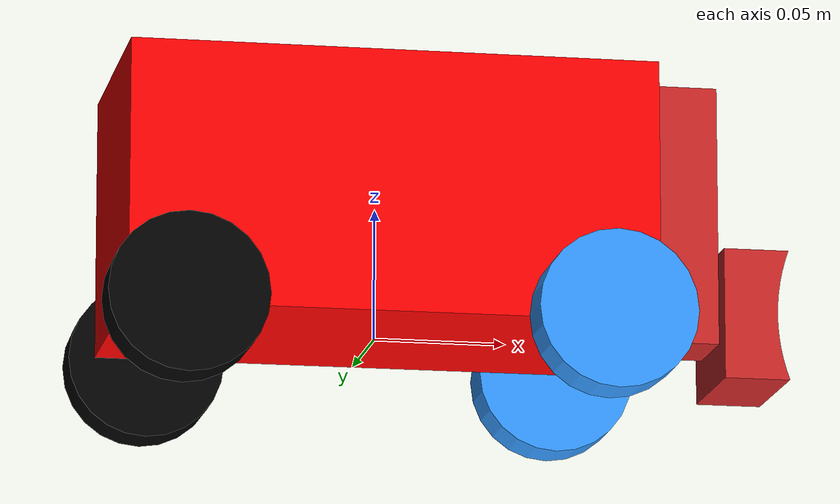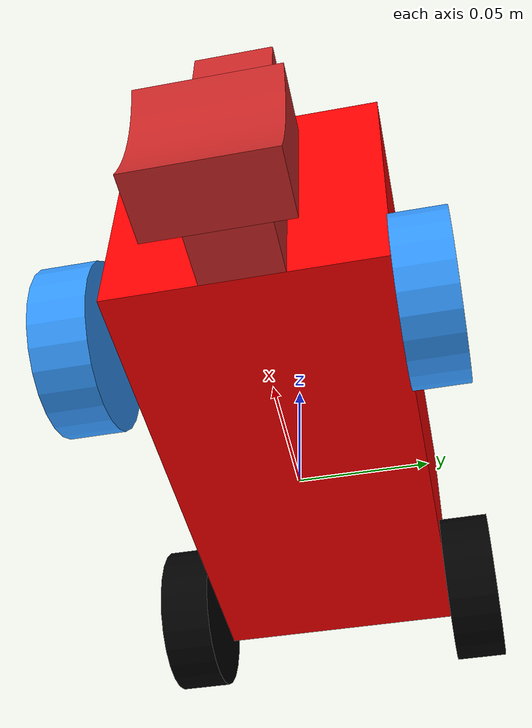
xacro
<?xml version="1.0"?>
<robot xmlns:xacro="http://www.ros.org/wiki/xacro" >
<xacro:include filename="inertial_macros.xacro" />

    <material name="white">
        <color rgba="1 1 1 1" />
    </material>

    <material name="orange">
        <color rgba="1 0.5 0 1"/>
    </material>

    <material name="blue">
        <color rgba="0.2 0.6 1 1"/>
    </material>

    <material name="black">
        <color rgba="0 0 0 1"/>
    </material>

    <material name="red">
        <color rgba="1 0 0 1"/>
    </material>

<!-- BASE LINK -->
<link name="base_link">

</link>

<joint name="chassis_joint" type="fixed">
    <parent link="base_link"/>
    <child link="chassis"/>
    <origin xyz="0 0 0"/>
</joint>

<link name="chassis">
    <visual>
        <geometry>
            <mesh filename="file://$(find articubot_one)/description/NewBody.dae" scale="10 10 10"/>
        </geometry>
        <material name="red"/>
    </visual>
    <collision>
        <geometry>
         <mesh filename="file://$(find articubot_one)/description/NewBody.dae" scale="10 10 10"/>
        </geometry>
    </collision>
    <xacro:inertial_box mass="40" x="0.2" y="0.1" z="0.1">
        <origin xyz="0 0 0.05" rpy="0 0 0"/>
    </xacro:inertial_box>
</link>
<gazebo reference="chassis">
    <material>Gazebo/Orange</material>
</gazebo>

<!-- LEFT WHEEL back-->
<joint name= "left_wheel_back_joint" type="continuous">
    <parent link="base_link"/>
    <child link="left_wheel_back"/>
    <origin xyz=" -0.08 0.06 0" rpy="-${pi/2} 0 0"/>
    <axis xyz="0 0 1"/>
</joint>

<link name="left_wheel_back">
    <visual>
        <geometry>
            <cylinder length="0.02" radius="0.03" />
        </geometry>
        <material name="black"/>
    </visual>
    <collision>
        <geometry>
            <cylinder length="0.02" radius="0.03" />
        </geometry>
    </collision>
    <xacro:inertial_cylinder mass="6" length="0.02" radius="0.03">
        <origin xyz="0 0 0" rpy="0 0 0"/>
    </xacro:inertial_cylinder>
</link>
<gazebo reference="left_wheel_back">
    <material>Gazebo/Black</material>
    <mu1 value="0.8"/>
    <mu2 value="0.8"/>
</gazebo>

<!-- LEFT WHEEL FRONT-->
<joint name="left_wheel_front_joint" type="continuous">
    <parent link="base_link"/>
    <child link="left_wheel_front"/>
    <origin xyz=" 0.08 0.06 0" rpy="-${pi/2} 0 0"/>
    <axis xyz="0 0 1"/>
</joint>

<link name="left_wheel_front">
    <visual>
        <geometry>
            <cylinder length="0.02" radius="0.03" />
        </geometry>
        <material name="blue"/>
    </visual>
    <collision>
        <geometry>
            <cylinder length="0.02" radius="0.03" />
        </geometry>
    </collision>
    <xacro:inertial_cylinder mass="6" length="0.02" radius="0.03">
        <origin xyz="0 0 0" rpy="0 0 0"/>
    </xacro:inertial_cylinder>
</link>
<gazebo reference="left_wheel_front">
    <material>Gazebo/Blue</material>
    <mu1 value="0.8"/>
    <mu2 value="0.8"/>
</gazebo>

<!-- RIGHT WHEEL BACK-->

<joint name="right_wheel_back_joint" type="continuous">
    <parent link="base_link"/>
    <child link="right_wheel_back"/>
    <origin xyz="-0.08 -0.06 0" rpy=" ${pi/2} 0 0"/>
    <axis xyz="0 0 -1"/>
</joint>

<link name="right_wheel_back">
    <visual>
        <geometry>
            <cylinder length="0.02" radius="0.03" />
        </geometry>
        <material name="black"/>
    </visual>
    <collision>
        <geometry>
            <cylinder length="0.02" radius="0.03" />
        </geometry>
    </collision>
    <xacro:inertial_cylinder mass="6" length="0.02" radius="0.03">
        <origin xyz="0 0 0" rpy="0 0 0"/>
    </xacro:inertial_cylinder>
</link>
<gazebo reference="right_wheel_back">
    <material>Gazebo/Black</material>
    <mu1 value="0.8"/>
    <mu2 value="0.8"/>
</gazebo>

<!-- RIGHT WHEEL FRONT-->

<joint name="right_wheel_front_joint" type="continuous">
    <parent link="base_link"/>
    <child link="right_wheel_front"/>
    <origin xyz="0.08 -0.06 0" rpy="${pi/2} 0 0"/>
    <axis xyz="0 0 -1"/>
</joint>

<link name="right_wheel_front">
    <visual>
        <geometry>
            <cylinder length="0.02" radius="0.03" />
        </geometry>
        <material name="blue"/>
    </visual>
    <collision>
        <geometry>
            <cylinder length="0.02" radius="0.03" />
        </geometry>
    </collision>
    <xacro:inertial_cylinder mass="6" length="0.02" radius="0.03">
        <origin xyz="0 0 0" rpy="0 0 0"/>
    </xacro:inertial_cylinder>
</link>
<gazebo reference="right_wheel_front">
    <material>Gazebo/Blue</material>
    <mu1 value="0.8"/>
    <mu2 value="0.8"/>
</gazebo>

<!-- arm -->

<joint name="arm_joint" type="revolute">
    <parent link="chassis"/>
    <child link="arm"/>
    <origin xyz="0.1 0 0.1" rpy="0 0 0"/>
    <axis xyz="0 -1 0"/>
    <limit effort="100" velocity="10" lower="0" upper="${pi}"/>
    <dynamics damping="1" friction="1"/>
</joint>

<link name="arm">
    <visual>
        <origin xyz="0.015 0 -0.05" rpy="0 0 0"/>
        <geometry>
            <box size="0.03 0.03 0.1"/>
        </geometry>
    </visual>
    <collision>
        <origin xyz="0.015 0 -0.05" rpy="0 0 0"/>
        <geometry>
            <box size="0.03 0.03 0.1"/>
        </geometry>
    </collision>
    <xacro:inertial_box mass="0.5" x="0.03" y="0.03" z="0.1">
        <origin xyz="0.015 0 -0.05" rpy="0 0 0"/>
    </xacro:inertial_box>
</link>
<gazebo reference="arm">
    <material>Gazebo/Red</material>
</gazebo>

<!-- Front_arm -->

<joint name= "front_arm_joint" type="revolute">
    <parent link="arm"/>
    <child link="front_arm_link"/>
    <origin xyz="0.03  0 -0.08" rpy="0 0 ${pi/2}"/>
    <axis xyz="1 0 0"/>
    <limit effort= "100" velocity="5" lower="0" upper="${pi/3}"/>
</joint>

<link name= "front_arm_link" >
      <visual>
        <origin xyz="0 0 -0.01" rpy="0 0 0"/>
        <geometry>
            <mesh filename="file://$(find articubot_one)/description/handed2.dae" scale="5 5 5"/>
        </geometry>
    </visual>
    <collision>
        <origin xyz="0 0 -0.01" rpy="0 0 0"/>
        <geometry>
             <mesh filename="file://$(find articubot_one)/description/handed2.dae" scale="5 5 5"/>
        </geometry>
    </collision>
    <xacro:inertial_box mass="0.05" x="0.05" y="0.025" z="0.05">
        <origin xyz="0 0 -0.01" rpy="0 0 0"/>
    </xacro:inertial_box>
</link>
<gazebo reference="front_arm_link">
    <material>Gazebo/Red</material>
</gazebo>

</robot>
